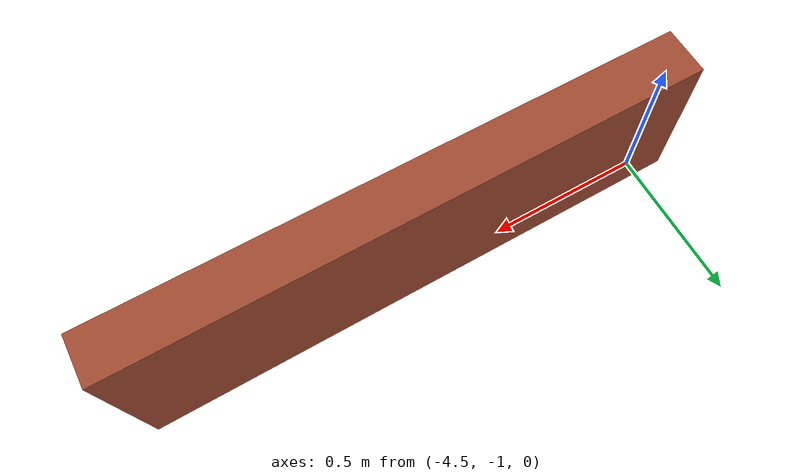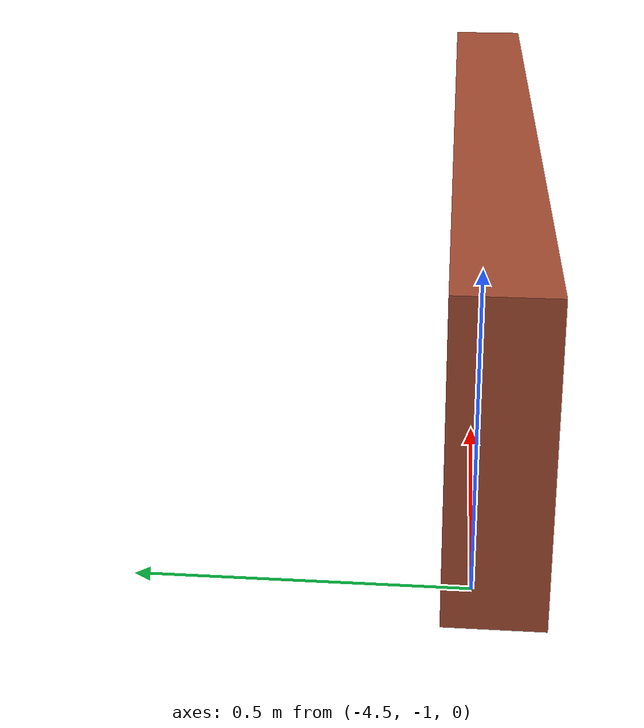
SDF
<?xml version='1.0'?>
<sdf version='1.7'>
  <model name='mon1'>
    <pose>-2.2975 -0.5525 0 0 -0 0</pose>
    <link name='Wall_0'>
      <collision name='Wall_0_Collision'>
        <geometry>
          <box>
            <size>1.75 0.15 0.5</size>
          </box>
        </geometry>
        <pose>0 0 0.25 0 -0 0</pose>
      </collision>
      <visual name='Wall_0_Visual'>
        <pose>0 0 0.25 0 -0 0</pose>
        <geometry>
          <box>
            <size>1.75 0.15 0.5</size>
          </box>
        </geometry>
        <material>
          <script>
            <uri>file://media/materials/scripts/gazebo.material</uri>
            <name>Gazebo/Bricks</name>
          </script>
          <ambient>0.996078 0.47451 0.0196078 1</ambient>
        </material>
        <meta>
          <layer>0</layer>
        </meta>
      </visual>
      <pose>-1.4225 -0.4775 0 0 -0 3.14159</pose>
    </link>
    <static>1</static>
  </model>
</sdf>
